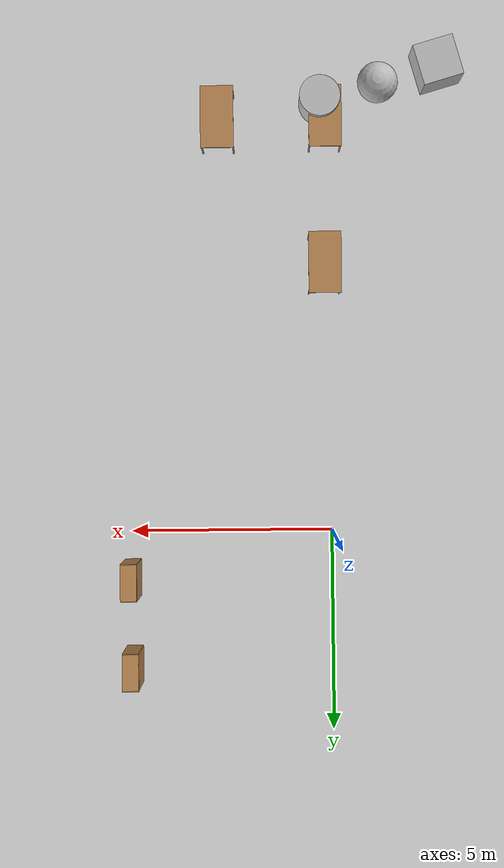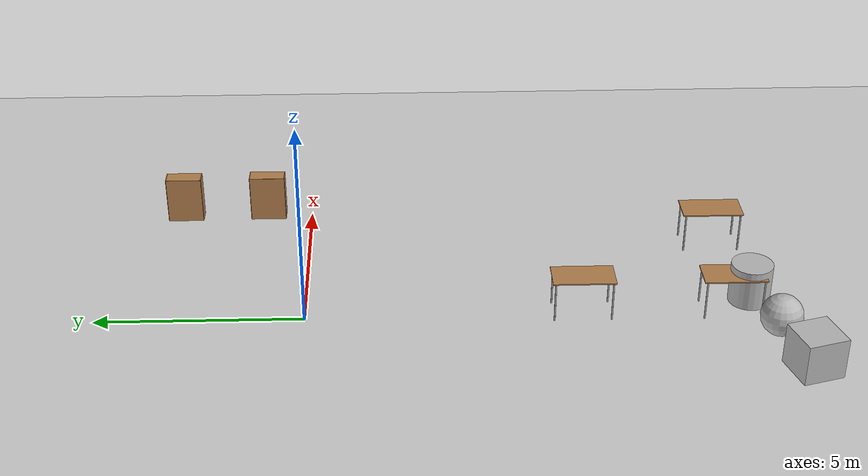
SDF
<sdf version="1.6">
 <world name="default">
  <light name="sun" type="directional">
   <pose>0 0 10 0 -0 0</pose>
   <diffuse>0.8 0.8 0.8 1</diffuse>
   <specular>0.2 0.2 0.2 1</specular>
   <attenuation>
    <range>1000</range>
    <constant>0.9</constant>
    <linear>0.01</linear>
    <quadratic>0.001</quadratic>
   </attenuation>
   <direction>-0.5 0.1 -0.9</direction>
  </light>
  <model name="ground_plane">
   <static>1</static>
   <link name="link">
    <collision name="collision">
     <geometry><plane><normal>0 0 1</normal><size>100 100</size></plane></geometry>
     <surface>
      <contact><collide_bitmask>65535</collide_bitmask></contact>
      <friction><ode><mu>100</mu><mu2>50</mu2></ode></friction>
     </surface>
    </collision>
    <visual name="visual">
     <cast_shadows>0</cast_shadows>
     <geometry><plane><normal>0 0 1</normal><size>100 100</size></plane></geometry>
     <material>
      <script><uri>file://media/materials/scripts/gazebo.material</uri><name>Gazebo/Grey</name></script>
     </material>
    </visual>
   </link>
  </model>
  <gravity>0 0 -9.8</gravity>
  <magnetic_field>6e-06 2.3e-05 -4.2e-05</magnetic_field>
  <atmosphere type="adiabatic"/>
  <physics name="default_physics" default="0" type="ode">
   <max_step_size>0.001</max_step_size>
   <real_time_factor>1</real_time_factor>
   <real_time_update_rate>1000</real_time_update_rate>
  </physics>
  <scene><ambient>0.4 0.4 0.4 1</ambient><background>0.7 0.7 0.7 1</background><shadows>1</shadows></scene>
  <spherical_coordinates>
   <surface_model>EARTH_WGS84</surface_model>
   <latitude_deg>0</latitude_deg>
   <longitude_deg>0</longitude_deg>
   <elevation>0</elevation>
   <heading_deg>0</heading_deg>
  </spherical_coordinates>
  <model name="textured_shapes">
   <pose>-1.19877 -11.0421 0.6898 0 0 -1.28738</pose>
   <link name="box">
    <pose>0 -1.5 0 0 -0 0</pose>
    <collision name="collision"><geometry><box><size>1 1 1</size></box></geometry></collision>
    <visual name="visual">
     <geometry><box><size>1 1 1</size></box></geometry>
     <material>
      <script>
       <uri>model://textured_shapes/materials/scripts</uri>
       <uri>model://textured_shapes/materials/textures</uri>
       <name>TexturedShape/Squares</name>
      </script>
     </material>
    </visual>
    <inertial>
     <inertia><ixx>1</ixx><ixy>0</ixy><ixz>0</ixz><iyy>1</iyy><iyz>0</iyz><izz>1</izz></inertia>
     <mass>1</mass>
    </inertial>
   </link>
   <link name="sphere">
    <collision name="collision"><geometry><sphere><radius>0.5</radius></sphere></geometry></collision>
    <visual name="visual">
     <geometry><sphere><radius>0.5</radius></sphere></geometry>
     <material>
      <script>
       <uri>model://textured_shapes/materials/scripts</uri>
       <uri>model://textured_shapes/materials/textures</uri>
       <name>TexturedShape/Squares</name>
      </script>
     </material>
    </visual>
    <inertial>
     <inertia><ixx>1</ixx><ixy>0</ixy><ixz>0</ixz><iyy>1</iyy><iyz>0</iyz><izz>1</izz></inertia>
     <mass>1</mass>
    </inertial>
   </link>
   <link name="cylinder">
    <pose>0 1.5 0 0 -0 0</pose>
    <collision name="collision">
     <geometry><cylinder><radius>0.5</radius><length>1</length></cylinder></geometry>
    </collision>
    <visual name="visual">
     <geometry><cylinder><radius>0.5</radius><length>1</length></cylinder></geometry>
     <material>
      <script>
       <uri>model://textured_shapes/materials/scripts</uri>
       <uri>model://textured_shapes/materials/textures</uri>
       <name>TexturedShape/Squares</name>
      </script>
     </material>
    </visual>
    <inertial>
     <inertia><ixx>1</ixx><ixy>0</ixy><ixz>0</ixz><iyy>1</iyy><iyz>0</iyz><izz>1</izz></inertia>
     <mass>1</mass>
    </inertial>
   </link>
  </model>
  <model name="table">
   <static>1</static>
   <link name="link">
    <collision name="surface">
     <pose>0 0 1 0 -0 0</pose>
     <geometry><box><size>1.5 0.8 0.03</size></box></geometry>
     <surface><friction><ode><mu>0.6</mu><mu2>0.6</mu2></ode></friction></surface>
    </collision>
    <visual name="visual1">
     <pose>0 0 1 0 -0 0</pose>
     <geometry><box><size>1.5 0.8 0.03</size></box></geometry>
     <material>
      <script><uri>file://media/materials/scripts/gazebo.material</uri><name>Gazebo/Wood</name></script>
     </material>
    </visual>
    <collision name="front_left_leg">
     <pose>0.68 0.38 0.5 0 -0 0</pose>
     <geometry><cylinder><radius>0.02</radius><length>1</length></cylinder></geometry>
    </collision>
    <visual name="front_left_leg">
     <pose>0.68 0.38 0.5 0 -0 0</pose>
     <geometry><cylinder><radius>0.02</radius><length>1</length></cylinder></geometry>
     <material>
      <script><uri>file://media/materials/scripts/gazebo.material</uri><name>Gazebo/Grey</name></script>
     </material>
    </visual>
    <collision name="front_right_leg">
     <pose>0.68 -0.38 0.5 0 -0 0</pose>
     <geometry><cylinder><radius>0.02</radius><length>1</length></cylinder></geometry>
    </collision>
    <visual name="front_right_leg">
     <pose>0.68 -0.38 0.5 0 -0 0</pose>
     <geometry><cylinder><radius>0.02</radius><length>1</length></cylinder></geometry>
     <material>
      <script><uri>file://media/materials/scripts/gazebo.material</uri><name>Gazebo/Grey</name></script>
     </material>
    </visual>
    <collision name="back_right_leg">
     <pose>-0.68 -0.38 0.5 0 -0 0</pose>
     <geometry><cylinder><radius>0.02</radius><length>1</length></cylinder></geometry>
    </collision>
    <visual name="back_right_leg">
     <pose>-0.68 -0.38 0.5 0 -0 0</pose>
     <geometry><cylinder><radius>0.02</radius><length>1</length></cylinder></geometry>
     <material>
      <script><uri>file://media/materials/scripts/gazebo.material</uri><name>Gazebo/Grey</name></script>
     </material>
    </visual>
    <collision name="back_left_leg">
     <pose>-0.68 0.38 0.5 0 -0 0</pose>
     <geometry><cylinder><radius>0.02</radius><length>1</length></cylinder></geometry>
    </collision>
    <visual name="back_left_leg">
     <pose>-0.68 0.38 0.5 0 -0 0</pose>
     <geometry><cylinder><radius>0.02</radius><length>1</length></cylinder></geometry>
     <material>
      <script><uri>file://media/materials/scripts/gazebo.material</uri><name>Gazebo/Grey</name></script>
     </material>
    </visual>
   </link>
   <pose>0.147382 -6.60184 0 0 -0 1.5707</pose>
  </model>
  <model name="table_0">
   <static>1</static>
   <link name="link">
    <collision name="surface">
     <pose>0 0 1 0 -0 0</pose>
     <geometry><box><size>1.5 0.8 0.03</size></box></geometry>
     <surface><friction><ode><mu>0.6</mu><mu2>0.6</mu2></ode></friction></surface>
    </collision>
    <visual name="visual1">
     <pose>0 0 1 0 -0 0</pose>
     <geometry><box><size>1.5 0.8 0.03</size></box></geometry>
     <material>
      <script><uri>file://media/materials/scripts/gazebo.material</uri><name>Gazebo/Wood</name></script>
     </material>
    </visual>
    <collision name="front_left_leg">
     <pose>0.68 0.38 0.5 0 -0 0</pose>
     <geometry><cylinder><radius>0.02</radius><length>1</length></cylinder></geometry>
    </collision>
    <visual name="front_left_leg">
     <pose>0.68 0.38 0.5 0 -0 0</pose>
     <geometry><cylinder><radius>0.02</radius><length>1</length></cylinder></geometry>
     <material>
      <script><uri>file://media/materials/scripts/gazebo.material</uri><name>Gazebo/Grey</name></script>
     </material>
    </visual>
    <collision name="front_right_leg">
     <pose>0.68 -0.38 0.5 0 -0 0</pose>
     <geometry><cylinder><radius>0.02</radius><length>1</length></cylinder></geometry>
    </collision>
    <visual name="front_right_leg">
     <pose>0.68 -0.38 0.5 0 -0 0</pose>
     <geometry><cylinder><radius>0.02</radius><length>1</length></cylinder></geometry>
     <material>
      <script><uri>file://media/materials/scripts/gazebo.material</uri><name>Gazebo/Grey</name></script>
     </material>
    </visual>
    <collision name="back_right_leg">
     <pose>-0.68 -0.38 0.5 0 -0 0</pose>
     <geometry><cylinder><radius>0.02</radius><length>1</length></cylinder></geometry>
    </collision>
    <visual name="back_right_leg">
     <pose>-0.68 -0.38 0.5 0 -0 0</pose>
     <geometry><cylinder><radius>0.02</radius><length>1</length></cylinder></geometry>
     <material>
      <script><uri>file://media/materials/scripts/gazebo.material</uri><name>Gazebo/Grey</name></script>
     </material>
    </visual>
    <collision name="back_left_leg">
     <pose>-0.68 0.38 0.5 0 -0 0</pose>
     <geometry><cylinder><radius>0.02</radius><length>1</length></cylinder></geometry>
    </collision>
    <visual name="back_left_leg">
     <pose>-0.68 0.38 0.5 0 -0 0</pose>
     <geometry><cylinder><radius>0.02</radius><length>1</length></cylinder></geometry>
     <material>
      <script><uri>file://media/materials/scripts/gazebo.material</uri><name>Gazebo/Grey</name></script>
     </material>
    </visual>
   </link>
   <pose>2.73951 -10.0948 0.296063 0 -0 1.5707</pose>
  </model>
  <model name="table_1">
   <static>1</static>
   <link name="link">
    <collision name="surface">
     <pose>0 0 1 0 -0 0</pose>
     <geometry><box><size>1.5 0.8 0.03</size></box></geometry>
     <surface><friction><ode><mu>0.6</mu><mu2>0.6</mu2></ode></friction></surface>
    </collision>
    <visual name="visual1">
     <pose>0 0 1 0 -0 0</pose>
     <geometry><box><size>1.5 0.8 0.03</size></box></geometry>
     <material>
      <script><uri>file://media/materials/scripts/gazebo.material</uri><name>Gazebo/Wood</name></script>
     </material>
    </visual>
    <collision name="front_left_leg">
     <pose>0.68 0.38 0.5 0 -0 0</pose>
     <geometry><cylinder><radius>0.02</radius><length>1</length></cylinder></geometry>
    </collision>
    <visual name="front_left_leg">
     <pose>0.68 0.38 0.5 0 -0 0</pose>
     <geometry><cylinder><radius>0.02</radius><length>1</length></cylinder></geometry>
     <material>
      <script><uri>file://media/materials/scripts/gazebo.material</uri><name>Gazebo/Grey</name></script>
     </material>
    </visual>
    <collision name="front_right_leg">
     <pose>0.68 -0.38 0.5 0 -0 0</pose>
     <geometry><cylinder><radius>0.02</radius><length>1</length></cylinder></geometry>
    </collision>
    <visual name="front_right_leg">
     <pose>0.68 -0.38 0.5 0 -0 0</pose>
     <geometry><cylinder><radius>0.02</radius><length>1</length></cylinder></geometry>
     <material>
      <script><uri>file://media/materials/scripts/gazebo.material</uri><name>Gazebo/Grey</name></script>
     </material>
    </visual>
    <collision name="back_right_leg">
     <pose>-0.68 -0.38 0.5 0 -0 0</pose>
     <geometry><cylinder><radius>0.02</radius><length>1</length></cylinder></geometry>
    </collision>
    <visual name="back_right_leg">
     <pose>-0.68 -0.38 0.5 0 -0 0</pose>
     <geometry><cylinder><radius>0.02</radius><length>1</length></cylinder></geometry>
     <material>
      <script><uri>file://media/materials/scripts/gazebo.material</uri><name>Gazebo/Grey</name></script>
     </material>
    </visual>
    <collision name="back_left_leg">
     <pose>-0.68 0.38 0.5 0 -0 0</pose>
     <geometry><cylinder><radius>0.02</radius><length>1</length></cylinder></geometry>
    </collision>
    <visual name="back_left_leg">
     <pose>-0.68 0.38 0.5 0 -0 0</pose>
     <geometry><cylinder><radius>0.02</radius><length>1</length></cylinder></geometry>
     <material>
      <script><uri>file://media/materials/scripts/gazebo.material</uri><name>Gazebo/Grey</name></script>
     </material>
    </visual>
   </link>
   <pose>0.11328 -10.1687 0 0 -0 1.5707</pose>
  </model>
  <model name="bookshelf">
   <static>1</static>
   <link name="link">
    <inertial><mass>1</mass></inertial>
    <collision name="back">
     <pose>0 0.005 0.6 0 -0 0</pose>
     <geometry><box><size>0.9 0.01 1.2</size></box></geometry>
    </collision>
    <visual name="visual1">
     <pose>0 0.005 0.6 0 -0 0</pose>
     <geometry><box><size>0.9 0.01 1.2</size></box></geometry>
     <material>
      <script><uri>file://media/materials/scripts/gazebo.material</uri><name>Gazebo/Wood</name></script>
     </material>
    </visual>
    <collision name="left_side">
     <pose>0.45 -0.195 0.6 0 -0 0</pose>
     <geometry><box><size>0.02 0.4 1.2</size></box></geometry>
    </collision>
    <visual name="visual2">
     <pose>0.45 -0.195 0.6 0 -0 0</pose>
     <geometry><box><size>0.02 0.4 1.2</size></box></geometry>
     <material>
      <script><uri>file://media/materials/scripts/gazebo.material</uri><name>Gazebo/Wood</name></script>
     </material>
    </visual>
    <collision name="right_side">
     <pose>-0.45 -0.195 0.6 0 -0 0</pose>
     <geometry><box><size>0.02 0.4 1.2</size></box></geometry>
    </collision>
    <visual name="visual3">
     <pose>-0.45 -0.195 0.6 0 -0 0</pose>
     <geometry><box><size>0.02 0.4 1.2</size></box></geometry>
     <material>
      <script><uri>file://media/materials/scripts/gazebo.material</uri><name>Gazebo/Wood</name></script>
     </material>
    </visual>
    <collision name="bottom">
     <pose>0 -0.195 0.03 0 -0 0</pose>
     <geometry><box><size>0.88 0.4 0.06</size></box></geometry>
    </collision>
    <visual name="visual4">
     <pose>0 -0.195 0.03 0 -0 0</pose>
     <geometry><box><size>0.88 0.4 0.06</size></box></geometry>
     <material>
      <script><uri>file://media/materials/scripts/gazebo.material</uri><name>Gazebo/Wood</name></script>
     </material>
    </visual>
    <collision name="top">
     <pose>0 -0.195 1.19 0 -0 0</pose>
     <geometry><box><size>0.88 0.4 0.02</size></box></geometry>
    </collision>
    <visual name="visual5">
     <pose>0 -0.195 1.19 0 -0 0</pose>
     <geometry><box><size>0.88 0.4 0.02</size></box></geometry>
     <material>
      <script><uri>file://media/materials/scripts/gazebo.material</uri><name>Gazebo/Wood</name></script>
     </material>
    </visual>
    <collision name="low_shelf">
     <pose>0 -0.195 0.43 0 -0 0</pose>
     <geometry><box><size>0.88 0.4 0.02</size></box></geometry>
    </collision>
    <visual name="visual6">
     <pose>0 -0.195 0.43 0 -0 0</pose>
     <geometry><box><size>0.88 0.4 0.02</size></box></geometry>
     <material>
      <script><uri>file://media/materials/scripts/gazebo.material</uri><name>Gazebo/Wood</name></script>
     </material>
    </visual>
    <collision name="high_shelf">
     <pose>0 -0.195 0.8 0 -0 0</pose>
     <geometry><box><size>0.88 0.4 0.02</size></box></geometry>
    </collision>
    <visual name="visual7">
     <pose>0 -0.195 0.8 0 -0 0</pose>
     <geometry><box><size>0.88 0.4 0.02</size></box></geometry>
     <material>
      <script><uri>file://media/materials/scripts/gazebo.material</uri><name>Gazebo/Wood</name></script>
     </material>
    </visual>
   </link>
   <pose>4.79594 1.14768 0 0 -0 1.5707</pose>
  </model>
  <model name="bookshelf_0">
   <static>1</static>
   <link name="link">
    <inertial><mass>1</mass></inertial>
    <collision name="back">
     <pose>0 0.005 0.6 0 -0 0</pose>
     <geometry><box><size>0.9 0.01 1.2</size></box></geometry>
    </collision>
    <visual name="visual1">
     <pose>0 0.005 0.6 0 -0 0</pose>
     <geometry><box><size>0.9 0.01 1.2</size></box></geometry>
     <material>
      <script><uri>file://media/materials/scripts/gazebo.material</uri><name>Gazebo/Wood</name></script>
     </material>
    </visual>
    <collision name="left_side">
     <pose>0.45 -0.195 0.6 0 -0 0</pose>
     <geometry><box><size>0.02 0.4 1.2</size></box></geometry>
    </collision>
    <visual name="visual2">
     <pose>0.45 -0.195 0.6 0 -0 0</pose>
     <geometry><box><size>0.02 0.4 1.2</size></box></geometry>
     <material>
      <script><uri>file://media/materials/scripts/gazebo.material</uri><name>Gazebo/Wood</name></script>
     </material>
    </visual>
    <collision name="right_side">
     <pose>-0.45 -0.195 0.6 0 -0 0</pose>
     <geometry><box><size>0.02 0.4 1.2</size></box></geometry>
    </collision>
    <visual name="visual3">
     <pose>-0.45 -0.195 0.6 0 -0 0</pose>
     <geometry><box><size>0.02 0.4 1.2</size></box></geometry>
     <material>
      <script><uri>file://media/materials/scripts/gazebo.material</uri><name>Gazebo/Wood</name></script>
     </material>
    </visual>
    <collision name="bottom">
     <pose>0 -0.195 0.03 0 -0 0</pose>
     <geometry><box><size>0.88 0.4 0.06</size></box></geometry>
    </collision>
    <visual name="visual4">
     <pose>0 -0.195 0.03 0 -0 0</pose>
     <geometry><box><size>0.88 0.4 0.06</size></box></geometry>
     <material>
      <script><uri>file://media/materials/scripts/gazebo.material</uri><name>Gazebo/Wood</name></script>
     </material>
    </visual>
    <collision name="top">
     <pose>0 -0.195 1.19 0 -0 0</pose>
     <geometry><box><size>0.88 0.4 0.02</size></box></geometry>
    </collision>
    <visual name="visual5">
     <pose>0 -0.195 1.19 0 -0 0</pose>
     <geometry><box><size>0.88 0.4 0.02</size></box></geometry>
     <material>
      <script><uri>file://media/materials/scripts/gazebo.material</uri><name>Gazebo/Wood</name></script>
     </material>
    </visual>
    <collision name="low_shelf">
     <pose>0 -0.195 0.43 0 -0 0</pose>
     <geometry><box><size>0.88 0.4 0.02</size></box></geometry>
    </collision>
    <visual name="visual6">
     <pose>0 -0.195 0.43 0 -0 0</pose>
     <geometry><box><size>0.88 0.4 0.02</size></box></geometry>
     <material>
      <script><uri>file://media/materials/scripts/gazebo.material</uri><name>Gazebo/Wood</name></script>
     </material>
    </visual>
    <collision name="high_shelf">
     <pose>0 -0.195 0.8 0 -0 0</pose>
     <geometry><box><size>0.88 0.4 0.02</size></box></geometry>
    </collision>
    <visual name="visual7">
     <pose>0 -0.195 0.8 0 -0 0</pose>
     <geometry><box><size>0.88 0.4 0.02</size></box></geometry>
     <material>
      <script><uri>file://media/materials/scripts/gazebo.material</uri><name>Gazebo/Wood</name></script>
     </material>
    </visual>
   </link>
   <pose>4.76683 3.31782 0 0 -0 1.5707</pose>
  </model>
  <model name="ball_bearing">
   <link name="link">
    <pose>0 0 0.003 0 -0 0</pose>
    <inertial>
     <mass>0.0011</mass>
     <inertia>
      <ixx>3.96e-09</ixx>
      <ixy>0</ixy>
      <ixz>0</ixz>
      <iyy>3.96e-09</iyy>
      <iyz>0</iyz>
      <izz>3.96e-09</izz>
     </inertia>
    </inertial>
    <collision name="collision">
     <geometry><sphere><radius>0.003</radius></sphere></geometry>
     <surface>
      <contact>
       <poissons_ratio>0.305</poissons_ratio>
       <elastic_modulus>2e+11</elastic_modulus>
       <ode><kp>100000</kp><kd>100</kd><max_vel>100</max_vel><min_depth>0.001</min_depth></ode>
      </contact>
      <friction>
       <torsional>
        <coefficient>1</coefficient>
        <use_patch_radius>0</use_patch_radius>
        <surface_radius>0.01</surface_radius>
       </torsional>
      </friction>
     </surface>
    </collision>
    <visual name="visual">
     <geometry><sphere><radius>0.003</radius></sphere></geometry>
     <material>
      <script><uri>file://media/materials/scripts/gazebo.material</uri><name>Gazebo/Grey</name></script>
     </material>
    </visual>
    <velocity_decay><linear>0</linear><angular>0.005</angular></velocity_decay>
   </link>
   <pose>5.17382 3.58355 -0.001676 0 -0 0</pose>
  </model>
 </world>
</sdf>
